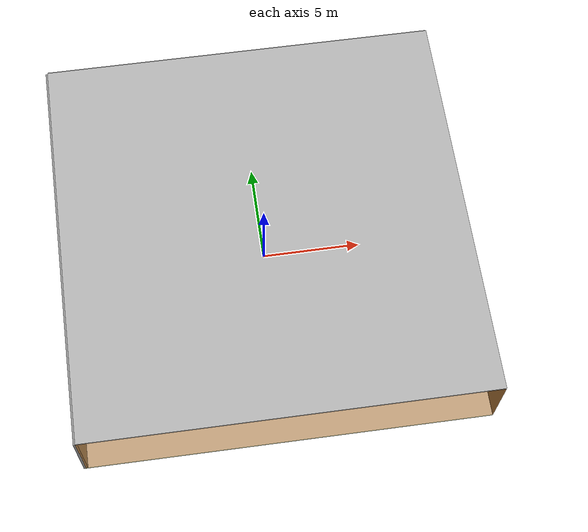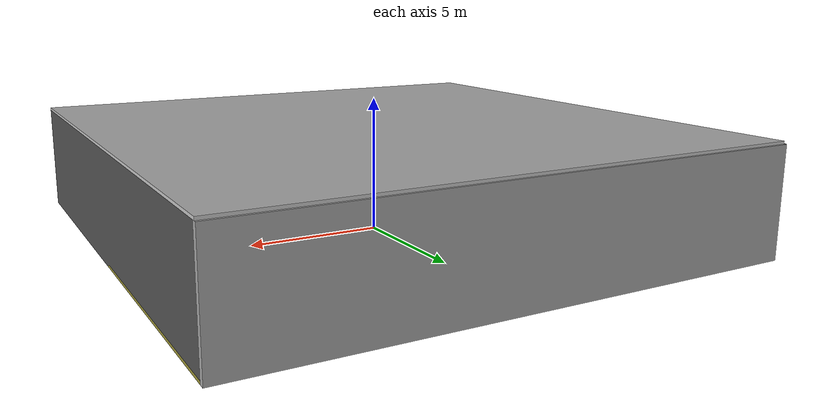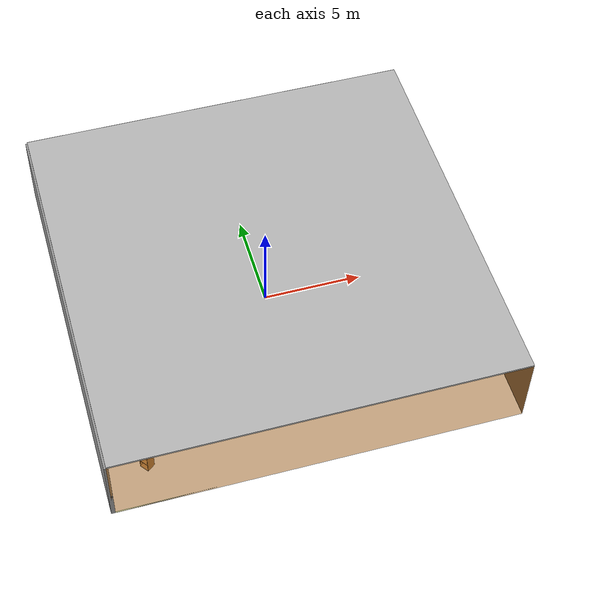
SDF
<sdf version="1.4">
 <world name="default">
  <physics type="ode">
   <max_step_size>0.001</max_step_size>
   <real_time_factor>1</real_time_factor>
   <real_time_update_rate>1000</real_time_update_rate>
   <gravity>0 0 -9.8</gravity>
  </physics>
  <scene><ambient>0.4 0.4 0.4 1</ambient><background>0.7 0.7 0.7 1</background><shadows>1</shadows></scene>
  <model name="Surrounding">
   <static>1</static>
   <link name="Ceiling">
    <collision name="Ceiling_Collision"><geometry><box><size>20 20 0.1</size></box></geometry></collision>
    <visual name="Ceiling_Visual">
     <geometry><box><size>20 20 0.1</size></box></geometry>
     <material>
      <script><uri>file://media/materials/scripts/gazebo.material</uri><name>Gazebo/LightOff</name></script>
     </material>
    </visual>
    <pose>0 0 4.05 0 0 0</pose>
   </link>
   <link name="Wall_South">
    <collision name="Wall_South_Collision">
     <geometry><box><size>20 0 4</size></box></geometry>
     <pose>0 0 2 0 -0 0</pose>
    </collision>
    <visual name="Wall_South_Visual">
     <pose>0 0 2 0 -0 0</pose>
     <geometry><box><size>20 0 4</size></box></geometry>
     <material>
      <script>
       <uri>file://media/materials/scripts/gazebo.material</uri>
       <name>Gazebo/OrangeTransparent</name>
      </script>
     </material>
    </visual>
    <velocity_decay><linear>0</linear><angular>0</angular></velocity_decay>
    <pose>0 -10 0 0 -0 0</pose>
   </link>
   <link name="Wall_East">
    <collision name="Wall_21_Collision">
     <geometry><box><size>20 0 4</size></box></geometry>
     <pose>0 0 2 0 -0 0</pose>
    </collision>
    <visual name="Wall_21_Visual">
     <pose>0 0 2 0 -0 0</pose>
     <geometry><box><size>20 0 4</size></box></geometry>
     <material>
      <script><uri>file://media/materials/scripts/gazebo.material</uri><name>Gazebo/DarkGrey</name></script>
     </material>
    </visual>
    <velocity_decay><linear>0</linear><angular>0</angular></velocity_decay>
    <pose>10 0 0 0 -0 1.5708</pose>
   </link>
   <link name="Wall_North">
    <collision name="Wall_22_Collision">
     <geometry><box><size>20 0.2 4</size></box></geometry>
     <pose>0 0 2 0 -0 0</pose>
    </collision>
    <visual name="Wall_22_Visual">
     <pose>0 0 2 0 -0 0</pose>
     <geometry><box><size>20 0.2 4</size></box></geometry>
     <material>
      <script><uri>file://media/materials/scripts/gazebo.material</uri><name>Gazebo/Grey</name></script>
     </material>
    </visual>
    <velocity_decay><linear>0</linear><angular>0</angular></velocity_decay>
    <pose>0 10 0 0 -0 0</pose>
   </link>
   <link name="Wall_West">
    <collision name="Wall_23_Collision">
     <geometry><box><size>20 0.2 4</size></box></geometry>
     <pose>0 0 2 0 -0 0</pose>
    </collision>
    <visual name="Wall_23_Visual">
     <pose>0 0 2 0 -0 0</pose>
     <geometry><box><size>20 0.2 4</size></box></geometry>
     <material>
      <script><uri>file://media/materials/scripts/gazebo.material</uri><name>Gazebo/Grey</name></script>
     </material>
    </visual>
    <velocity_decay><linear>0</linear><angular>0</angular></velocity_decay>
    <pose>-10 0 0 0 0 -1.5708</pose>
   </link>
   <link name="Ground_link">
    <collision name="collision">
     <pose>0 0 .05 0 -0 0</pose>
     <geometry><box><size>20 20 0.1</size></box></geometry>
    </collision>
    <visual name="visual">
     <pose>0 0 .05 0 -0 0</pose>
     <geometry><box><size>20 20 0.1</size></box></geometry>
     <material>
      <script>
       <uri>file://media/materials/scripts/gazebo.material</uri>
       <name>Gazebo/YellowTransparent</name>
      </script>
     </material>
    </visual>
   </link>
   <static>1</static>
  </model>
  <spherical_coordinates>
   <surface_model>EARTH_WGS84</surface_model>
   <latitude_deg>0</latitude_deg>
   <longitude_deg>0</longitude_deg>
   <elevation>0</elevation>
   <heading_deg>0</heading_deg>
  </spherical_coordinates>
  <light name="lightball_0" type="diffuse">
   <diffuse>0.8 0.8 0.8 1</diffuse>
   <specular>0.2 0.2 0.2 1</specular>
   <attenuation>
    <range>100</range>
    <constant>0.7</constant>
    <linear>0.01</linear>
    <quadratic>0.001</quadratic>
   </attenuation>
   <direction>-0.5 0.1 -0.9</direction>
   <pose>-9.76982600418 0.442680609718 0.849285080116 0 0 0</pose>
  </light>
  <light name="lightball_1" type="diffuse">
   <diffuse>0.8 0.8 0.8 1</diffuse>
   <specular>0.2 0.2 0.2 1</specular>
   <attenuation>
    <range>100</range>
    <constant>0.7</constant>
    <linear>0.01</linear>
    <quadratic>0.001</quadratic>
   </attenuation>
   <direction>-0.5 0.1 -0.9</direction>
   <pose>-3.21760797499 4.36209162827 2.32719122908 0 0 0</pose>
  </light>
  <light name="lightball_2" type="diffuse">
   <diffuse>0.8 0.8 0.8 1</diffuse>
   <specular>0.2 0.2 0.2 1</specular>
   <attenuation>
    <range>100</range>
    <constant>0.7</constant>
    <linear>0.01</linear>
    <quadratic>0.001</quadratic>
   </attenuation>
   <direction>-0.5 0.1 -0.9</direction>
   <pose>-1.55095784387 -2.22105209868 2.51461847568 0 0 0</pose>
  </light>
  <light name="lightball_3" type="diffuse">
   <diffuse>0.8 0.8 0.8 1</diffuse>
   <specular>0.2 0.2 0.2 1</specular>
   <attenuation>
    <range>100</range>
    <constant>0.7</constant>
    <linear>0.01</linear>
    <quadratic>0.001</quadratic>
   </attenuation>
   <direction>-0.5 0.1 -0.9</direction>
   <pose>4.39560177671 3.88934385021 3.33990056744 0 0 0</pose>
  </light>
  <light name="lightball_4" type="diffuse">
   <diffuse>0.8 0.8 0.8 1</diffuse>
   <specular>0.2 0.2 0.2 1</specular>
   <attenuation>
    <range>100</range>
    <constant>0.7</constant>
    <linear>0.01</linear>
    <quadratic>0.001</quadratic>
   </attenuation>
   <direction>-0.5 0.1 -0.9</direction>
   <pose>-1.24633001234 -2.19581956726 2.61023604131 0 0 0</pose>
  </light>
  <light name="lightball_5" type="diffuse">
   <diffuse>0.8 0.8 0.8 1</diffuse>
   <specular>0.2 0.2 0.2 1</specular>
   <attenuation>
    <range>100</range>
    <constant>0.7</constant>
    <linear>0.01</linear>
    <quadratic>0.001</quadratic>
   </attenuation>
   <direction>-0.5 0.1 -0.9</direction>
   <pose>4.11810647927 3.51257226665 3.67273557762 0 0 0</pose>
  </light>
  <light name="lightball_6" type="diffuse">
   <diffuse>0.8 0.8 0.8 1</diffuse>
   <specular>0.2 0.2 0.2 1</specular>
   <attenuation>
    <range>100</range>
    <constant>0.7</constant>
    <linear>0.01</linear>
    <quadratic>0.001</quadratic>
   </attenuation>
   <direction>-0.5 0.1 -0.9</direction>
   <pose>9.25130271863 8.15389177563 3.69534971639 0 0 0</pose>
  </light>
  <light name="lightball_7" type="diffuse">
   <diffuse>0.8 0.8 0.8 1</diffuse>
   <specular>0.2 0.2 0.2 1</specular>
   <attenuation>
    <range>100</range>
    <constant>0.7</constant>
    <linear>0.01</linear>
    <quadratic>0.001</quadratic>
   </attenuation>
   <direction>-0.5 0.1 -0.9</direction>
   <pose>7.95484574549 0.762811853175 2.0684548967 0 0 0</pose>
  </light>
  <light name="lightball_8" type="diffuse">
   <diffuse>0.8 0.8 0.8 1</diffuse>
   <specular>0.2 0.2 0.2 1</specular>
   <attenuation>
    <range>100</range>
    <constant>0.7</constant>
    <linear>0.01</linear>
    <quadratic>0.001</quadratic>
   </attenuation>
   <direction>-0.5 0.1 -0.9</direction>
   <pose>-8.63667378848 2.02380835675 3.19405619127 0 0 0</pose>
  </light>
  <light name="lightball_9" type="diffuse">
   <diffuse>0.8 0.8 0.8 1</diffuse>
   <specular>0.2 0.2 0.2 1</specular>
   <attenuation>
    <range>100</range>
    <constant>0.7</constant>
    <linear>0.01</linear>
    <quadratic>0.001</quadratic>
   </attenuation>
   <direction>-0.5 0.1 -0.9</direction>
   <pose>5.01028225468 -3.50419955915 3.26598602379 0 0 0</pose>
  </light>
  <include><uri>model://cabinet</uri><pose>-7.94901904004 -7.95825834071 0 0 0 0.65505994876</pose></include>
  <include><uri>model://table</uri><pose>-7.05138862292 4.61517054541 0 0 0 0.404163536202</pose></include>
  <include>
   <uri>model://textured_shapes</uri>
   <pose>-0.724753792439 4.25608659247 0 0 0 1.85612890848</pose>
  </include>
  <include><uri>model://table</uri><pose>8.24886476046 8.13814795918 0 0 0 2.39549654966</pose></include>
 </world>
</sdf>

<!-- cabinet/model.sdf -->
<sdf version="1.5">
  <model name="cabinet">
    <static>true</static>
    <link name="cabinet_bottom_plate">
      <inertial>
        <pose>0 0 -1 0 0 0</pose>
        <inertia>
          <ixx>2.050000</ixx>
          <ixy>0</ixy>
          <ixz>0</ixz>
          <iyy>2.050000</iyy>
          <iyz>0</iyz>
          <izz>2.050000</izz>
        </inertia>
        <mass>25.000000</mass>
      </inertial>
      <collision name="cabinet_bottom_plate_geom">
        <pose>0 0 0.010000 0 0 0</pose>
        <geometry>
          <box>
            <size>0.450000 0.450000 0.020000</size>
          </box>
        </geometry>
      </collision>
      <visual name="cabinet_bottom_plate_geom_visual">
        <pose>0 0 0.010000 0 0 0</pose>
        <geometry>
          <box>
            <size>0.450000 0.450000 0.020000</size>
          </box>
        </geometry>
        <material>
          <script>
            <uri>model://media/materials/scripts/gazebo.material</uri>
            <name>Gazebo/Wood</name>
          </script>
        </material>
      </visual>
      <collision name="cabinet_bottom_plate_geom_cabinet_back_plate">
        <pose>0.235000 0 0.510000 0 0 0</pose>
        <geometry>
          <box>
            <size>0.020000 0.450000 1.020000</size>
          </box>
        </geometry>
      </collision>
      <visual name="cabinet_bottom_plate_geom_cabinet_back_plate_visual">
        <pose>0.235000 0 0.510000 0 0 0</pose>
        <geometry>
          <box>
            <size>0.020000 0.450000 1.020000</size>
          </box>
        </geometry>
        <material>
          <script>
            <uri>model://media/materials/scripts/gazebo.material</uri>
            <name>Gazebo/Wood</name>
          </script>
        </material>
      </visual>
      <collision name="cabinet_bottom_plate_geom_cabinet_left_plate">
        <pose>0 0.235000 0.510000 0 0 0</pose>
        <geometry>
          <box>
            <size>0.450000 0.020000 1.020000</size>
          </box>
        </geometry>
      </collision>
      <visual name="cabinet_bottom_plate_geom_cabinet_left_plate_visual">
        <pose>0 0.235000 0.510000 0 0 0</pose>
        <geometry>
          <box>
            <size>0.450000 0.020000 1.020000</size>
          </box>
        </geometry>
        <material>
          <script>
            <uri>model://media/materials/scripts/gazebo.material</uri>
            <name>Gazebo/Wood</name>
          </script>
        </material>
      </visual>
      <collision name="cabinet_bottom_plate_geom_cabinet_middle_plate">
        <pose>0 0 0.510000 0 0 0</pose>
        <geometry>
          <box>
            <size>0.450000 0.450000 0.020000</size>
          </box>
        </geometry>
      </collision>
      <visual name="cabinet_bottom_plate_geom_cabinet_middle_plate_visual">
        <pose>0 0 0.510000 0 0 0</pose>
        <geometry>
          <box>
            <size>0.450000 0.450000 0.020000</size>
          </box>
        </geometry>
        <material>
          <script>
            <uri>model://media/materials/scripts/gazebo.material</uri>
            <name>Gazebo/Wood</name>
          </script>
        </material>
      </visual>
      <collision name="cabinet_bottom_plate_geom_cabinet_right_plate">
        <pose>0 -0.235000 0.510000 0 0 0</pose>
        <geometry>
          <box>
            <size>0.450000 0.020000 1.020000</size>
          </box>
        </geometry>
      </collision>
      <visual name="cabinet_bottom_plate_geom_cabinet_right_plate_visual">
        <pose>0 -0.235000 0.510000 0 0 0</pose>
        <geometry>
          <box>
            <size>0.450000 0.020000 1.020000</size>
          </box>
        </geometry>
        <material>
          <script>
            <uri>model://media/materials/scripts/gazebo.material</uri>
            <name>Gazebo/Wood</name>
          </script>
        </material>
      </visual>
      <collision name="cabinet_bottom_plate_geom_cabinet_top_plate">
        <pose>0 0 1.010000 0 0 0</pose>
        <geometry>
          <box>
            <size>0.450000 0.450000 0.020000</size>
          </box>
        </geometry>
      </collision>
      <visual name="cabinet_bottom_plate_geom_cabinet_top_plate_visual">
        <pose>0 0 1.010000 0 0 0</pose>
        <geometry>
          <box>
            <size>0.450000 0.450000 0.020000</size>
          </box>
        </geometry>
        <material>
          <script>
            <uri>model://media/materials/scripts/gazebo.material</uri>
            <name>Gazebo/Wood</name>
          </script>
        </material>
      </visual>
    </link>
  </model>
</sdf>

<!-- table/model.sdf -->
<sdf version="1.5">
  <model name="table">
    <static>true</static>
    <link name="link">
      <collision name="surface">
        <pose>0 0 1.0 0 0 0</pose>
        <geometry>
          <box>
            <size>1.5 0.8 0.03</size>
          </box>
        </geometry>
        <surface>
          <friction>
            <ode>
              <mu>0.6</mu>
              <mu2>0.6</mu2>
            </ode>
          </friction>
        </surface>
      </collision>
      <visual name="visual1">
        <pose>0 0 1.0 0 0 0</pose>
        <geometry>
          <box>
            <size>1.5 0.8 0.03</size>
          </box>
        </geometry>
        <material>
          <script>
            <uri>model://media/materials/scripts/gazebo.material</uri>
            <name>Gazebo/Wood</name>
          </script>
        </material>
      </visual>
      <collision name="front_left_leg">
        <pose>0.68 0.38 0.5 0 0 0</pose>
        <geometry>
          <cylinder>
            <radius>0.02</radius>
            <length>1.0</length>
          </cylinder>
        </geometry>
      </collision>
      <visual name="front_left_leg">
        <pose>0.68 0.38 0.5 0 0 0</pose>
        <geometry>
          <cylinder>
            <radius>0.02</radius>
            <length>1.0</length>
          </cylinder>
        </geometry>
        <material>
          <script>
            <uri>model://media/materials/scripts/gazebo.material</uri>
            <name>Gazebo/Grey</name>
          </script>
        </material>
      </visual>
      <collision name="front_right_leg">
        <pose>0.68 -0.38 0.5 0 0 0</pose>
        <geometry>
          <cylinder>
            <radius>0.02</radius>
            <length>1.0</length>
          </cylinder>
        </geometry>
      </collision>
      <visual name="front_right_leg">
        <pose>0.68 -0.38 0.5 0 0 0</pose>
        <geometry>
          <cylinder>
            <radius>0.02</radius>
            <length>1.0</length>
          </cylinder>
        </geometry>
        <material>
          <script>
            <uri>model://media/materials/scripts/gazebo.material</uri>
            <name>Gazebo/Grey</name>
          </script>
        </material>
      </visual>
      <collision name="back_right_leg">
        <pose>-0.68 -0.38 0.5 0 0 0</pose>
        <geometry>
          <cylinder>
            <radius>0.02</radius>
            <length>1.0</length>
          </cylinder>
        </geometry>
      </collision>
      <visual name="back_right_leg">
        <pose>-0.68 -0.38 0.5 0 0 0</pose>
        <geometry>
          <cylinder>
            <radius>0.02</radius>
            <length>1.0</length>
          </cylinder>
        </geometry>
        <material>
          <script>
            <uri>model://media/materials/scripts/gazebo.material</uri>
            <name>Gazebo/Grey</name>
          </script>
        </material>
      </visual>
      <collision name="back_left_leg">
        <pose>-0.68 0.38 0.5 0 0 0</pose>
        <geometry>
          <cylinder>
            <radius>0.02</radius>
            <length>1.0</length>
          </cylinder>
        </geometry>
      </collision>
      <visual name="back_left_leg">
        <pose>-0.68 0.38 0.5 0 0 0</pose>
        <geometry>
          <cylinder>
            <radius>0.02</radius>
            <length>1.0</length>
          </cylinder>
        </geometry>
        <material>
          <script>
            <uri>model://media/materials/scripts/gazebo.material</uri>
            <name>Gazebo/Grey</name>
          </script>
        </material>
      </visual>
    </link>
  </model>
</sdf>

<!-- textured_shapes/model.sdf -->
<sdf version="1.6">
  <model name="textured_shapes">
    <pose>0 0 0.5 0 0 0</pose>
    <link name="box">
      <pose>0 -1.5 0 0 0 0</pose>
      <collision name="collision">
        <geometry>
          <box>
            <size>1 1 1</size>
          </box>
        </geometry>
      </collision>
      <visual name="visual">
        <geometry>
          <box>
            <size>1 1 1</size>
          </box>
        </geometry>
        <material>
          <script>
            <uri>model://../model_source/models/textured_shapes/materials/scripts</uri>
            <uri>model://../model_source/models/textured_shapes/materials/textures</uri>
            <name>TexturedShape/Squares</name>
          </script>
        </material>
      </visual>
    </link>
    <link name="sphere">
      <collision name="collision">
        <geometry>
          <sphere>
            <radius>0.5</radius>
          </sphere>
        </geometry>
      </collision>
      <visual name="visual">
        <geometry>
          <sphere>
            <radius>0.5</radius>
          </sphere>
        </geometry>
        <material>
          <script>
            <uri>model://../model_source/models/textured_shapes/materials/scripts</uri>
            <uri>model://../model_source/models/textured_shapes/materials/textures</uri>
            <name>TexturedShape/Squares</name>
          </script>
        </material>
      </visual>
    </link>
    <link name="cylinder">
      <pose>0 1.5 0 0 0 0</pose>
      <collision name="collision">
        <geometry>
          <cylinder>
            <radius>0.5</radius>
            <length>1</length>
          </cylinder>
        </geometry>
      </collision>
      <visual name="visual">
        <geometry>
          <cylinder>
            <radius>0.5</radius>
            <length>1</length>
          </cylinder>
        </geometry>
        <material>
          <script>
            <uri>model://../model_source/models/textured_shapes/materials/scripts</uri>
            <uri>model://../model_source/models/textured_shapes/materials/textures</uri>
            <name>TexturedShape/Squares</name>
          </script>
        </material>
      </visual>
    </link>
  </model>
</sdf>
